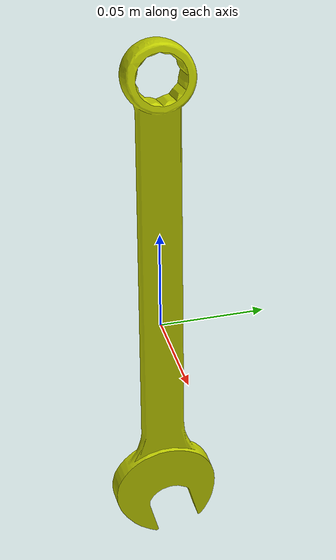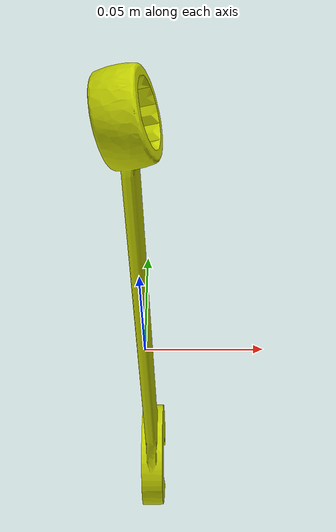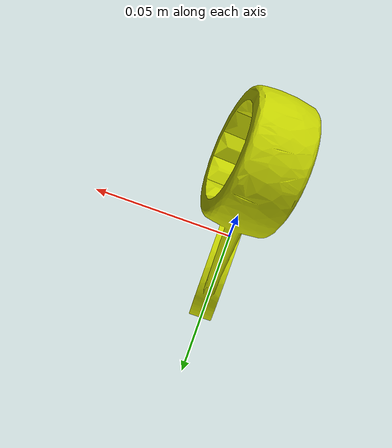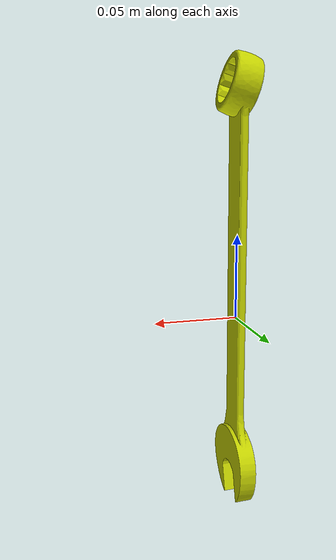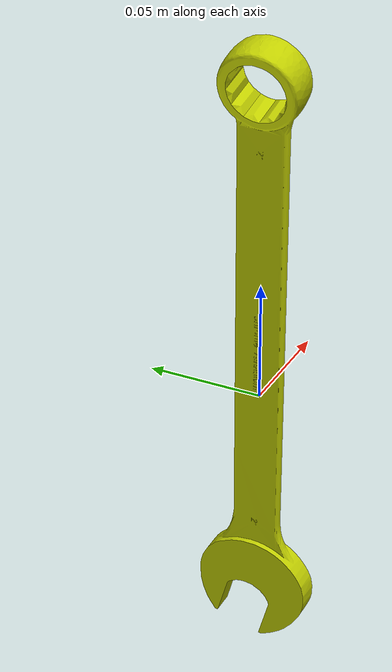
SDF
<?xml version="1.0"?>
<sdf version="1.7">
  <model name="combination_wrench_21mm_bright">
    <pose>0 0 0 0 0 0</pose>
    <static>false</static>
    <link name="link">
      <!-- link frame = tool CoM; Z = long axis (+ toward tool end), X = forward, Y = Z x X -->
      <inertial>
        <pose>0 0 0 0 0 0</pose>
        <mass>0.313406</mass>
        <inertia>
          <ixx>2.424331e-03</ixx>
          <ixy>2.040928e-19</ixy>
          <ixz>-3.531450e-22</ixz>
          <iyy>2.394805e-03</iyy>
          <iyz>4.862004e-21</iyz>
          <izz>3.443768e-05</izz>
        </inertia>
      </inertial>
      <collision name="collision">
        <geometry>
          <mesh>
            <uri>model://combination_wrench_21mm/meshes/combination_wrench_21mm.dae</uri>
          </mesh>
        </geometry>
      </collision>
      <visual name="visual">
        <geometry>
          <mesh>
            <uri>model://combination_wrench_21mm/meshes/combination_wrench_21mm.dae</uri>
          </mesh>
        </geometry>
        <material>
          <ambient>0.345 0.369 0.000 1.0</ambient>
          <diffuse>0.767 0.820 0.000 1.0</diffuse>
          <specular>0.85 0.85 0.85 1.0</specular>
          <emissive>0 0 0 1.0</emissive>
        </material>
      </visual>
    </link>
  </model>
</sdf>
